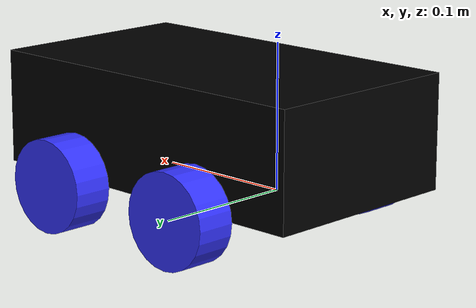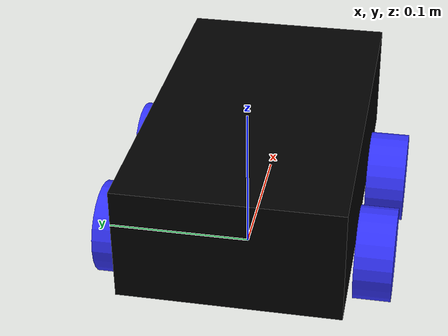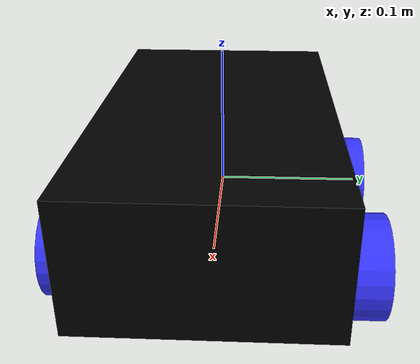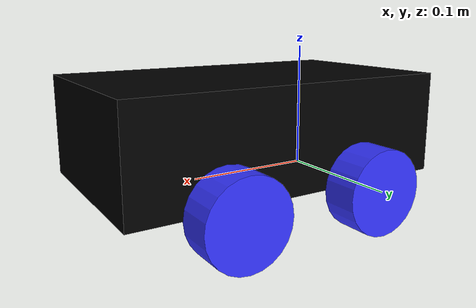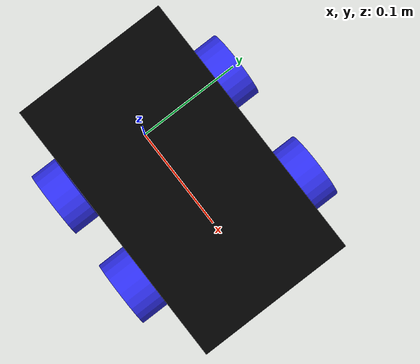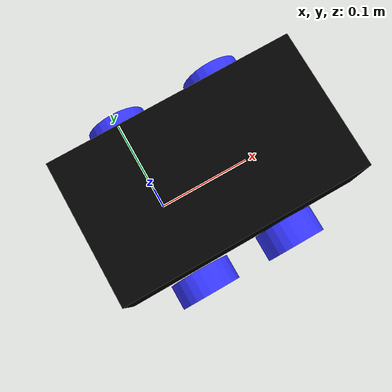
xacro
<?xml version="1.0"?>
<robot xmlns:xacro="http://www.ros.org/wiki/xacro" >

    <xacro:include filename="inertial_macros.xacro"/>

    <material name="white">
        <color rgba="1 1 1 1" />
    </material>

    <material name="orange">
        <color rgba="1 0.3 0.1 1"/>
    </material>

    <material name="blue">
        <color rgba="0.2 0.2 1 1"/>
    </material>

    <material name="black">
        <color rgba="0 0 0 1"/>
    </material>

    <material name="red">
        <color rgba="1 0 0 1"/>
    </material>
    <!-- BASE LINK -->

    <link name="base_link">

    </link>

   <!-- BASE_FOOTPRINT LINK -->

    <joint name="base_footprint_joint" type="fixed">
        <parent link="base_link"/>
        <child link="base_footprint"/>
        <origin xyz="0 0 0" rpy="0 0 0"/>
    </joint>

    <link name="base_footprint">

    </link>

    <!-- CHASSIS LINK -->

     <joint name="chassis_joint" type="fixed">
        <parent link="base_link"/>
        <child link="chassis"/>
        <origin xyz="-0.075 0 0"/>
    </joint>

    <link name="chassis">
        <visual>
            <origin xyz="0.13 0 0.04"/>
            <geometry>
                <box size="0.26 0.15 0.08"/>
            </geometry>
            <material name="black"/>
        </visual>
        <collision>
            <origin xyz="0.13 0 0.04"/>
            <geometry>
                <box size="0.26 0.15 0.08"/>
            </geometry>
        </collision>
        <xacro:inertial_box mass="0.5" x="0.26" y="0.15" z="0.08">
            <origin xyz="0.13 0 0.04" rpy="0 0 0"/>
        </xacro:inertial_box>
    </link>
    <!-- les moments d'inertie -->
    <gazebo reference="chassis">
        <material>Gazebo/balck</material>
    </gazebo>

    <!-- LEFT WHEEL LINK BACK-->
    <joint name="left_wheel_joint" type="continuous">
        <parent link="base_link"/>
        <child link="left_wheel_back"/>
        <origin xyz="0 0.090 0" rpy="-${pi/2} 0 0" />
        <axis xyz="0 0 1"/>
    </joint>

    <link name="left_wheel_back">
        <visual>
            <geometry>
                <cylinder radius="0.0325" length="0.028"/>
            </geometry>
            <material name="blue"/>
        </visual>

        <collision>
            <geometry>
                <cylinder radius="0.0325" length="0.028"/>
            </geometry>
        </collision>
        <xacro:inertial_cylinder mass="0.1" length="0.028" radius="0.0325">
            <origin xyz="0 0 0" rpy="0 0 0"/>
        </xacro:inertial_cylinder>

    </link>
    <gazebo reference="left_wheel_back">
        <material>Gazebo/Blue</material>
    </gazebo>

  <!-- LEFT WHEEL LINK front-->

    <joint name="left_wheel_joint_front" type="fixed">
        <parent link="base_link"/>
        <child link="left_wheel_front"/>
        <origin xyz="0.115 0.090 0" rpy="-${pi/2} 0 0" />
    </joint>

    <link name="left_wheel_front">
        <visual>
            <geometry>
                <cylinder radius="0.0325" length="0.028"/>
            </geometry>
            <material name="blue"/>
        </visual>
        <collision>
            <geometry>
                <cylinder radius="0.0325" length="0.028" />
            </geometry>
        </collision>
        <xacro:inertial_cylinder mass="0.1" length="0.028" radius="0.0325">
            <origin xyz="0 0 0" rpy="0 0 0"/>
        </xacro:inertial_cylinder>

    </link>
    <gazebo reference="left_wheel_front">
        <material>Gazebo/Blue</material>
        <mu1 value="0.001"/>
        <mu2 value="0.001"/>
    </gazebo>
    <!-- RIGHT WHEEL LINK -->

    <joint name="right_wheel_joint" type="continuous">
        <parent link="base_link"/>
        <child link="right_wheel"/>
        <origin xyz="0 -0.090 0" rpy="${pi/2} 0 0" />
        <axis xyz="0 0 -1"/>
    </joint>

    <link name="right_wheel">
        <visual>
            <geometry>
                <cylinder radius="0.0325" length="0.026"/>
            </geometry>
            <material name="blue"/>
        </visual>
        <collision>
            <geometry>
                <cylinder radius="0.0325" length="0.028"/>
            </geometry>
        </collision>
        <xacro:inertial_cylinder mass="0.1" length="0.028" radius="0.0325">
            <origin xyz="0 0 0" rpy="0 0 0"/>
        </xacro:inertial_cylinder>
    </link>
    <gazebo reference="right_wheel">
        <material>Gazebo/Blue</material>
    </gazebo>
        <!-- RIGHT WHEEL LINK front -->

    <joint name="right_wheel_joint_front" type="fixed">
        <parent link="base_link"/>
        <child link="right_wheel_front"/>
        <origin xyz="0.1 -0.090 0" rpy="${pi/2} 0 0" />
    </joint>

    <link name="right_wheel_front">
        <visual>
            <geometry>
                <cylinder radius="0.0325" length="0.028"/>
            </geometry>
            <material name="blue"/>
        </visual>
        <collision>
            <geometry>
                <cylinder radius="0.0325" length="0.028" />
            </geometry>
        </collision>
        <xacro:inertial_cylinder mass="0.1" length="0.028" radius="0.0325">
            <origin xyz="0 0 0" rpy="0 0 0"/>
        </xacro:inertial_cylinder>
    </link>
    <gazebo reference="right_wheel_front">
        <material>Gazebo/Blue</material>
        <mu1 value="0.001"/>
        <mu2 value="0.001"/>
    </gazebo>

    <!-- Camera Joint -->

    <!-- camera_link describes the camera at the front of the AMR robot -->
    <!-- - It has multiple visual elements, which ultimately get combined together -->
    <!-- - Even if we specify different materials, RViz will just colour them all the same as the first -->
    <!-- - Although we could also specify multiple collision geometries, instead we just use a single box that encompasses the whole camera -->
</robot>

                                <!-- NOTE -->

                        <!-- SLAM -->
